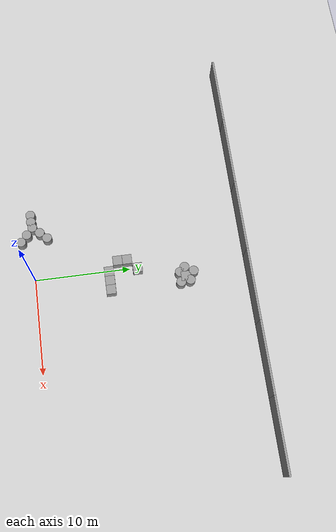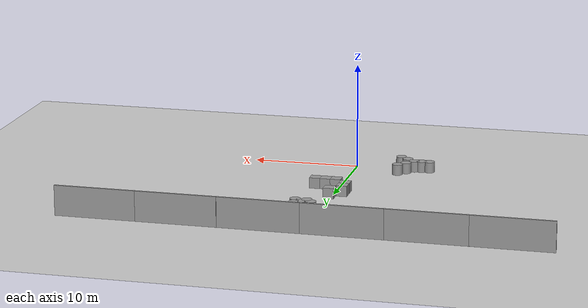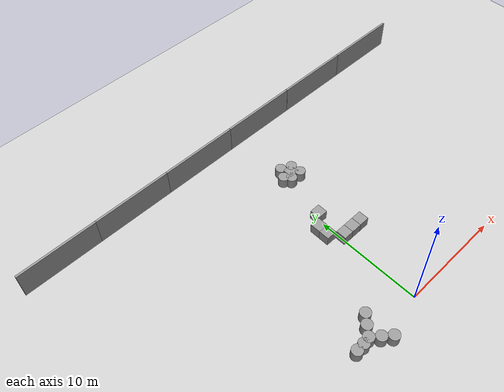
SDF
<sdf version="1.6">
 <world name="default">
  <model name="ground_plane">
   <static>1</static>
   <link name="link">
    <collision name="collision">
     <geometry><plane><normal>0 0 1</normal><size>100 100</size></plane></geometry>
     <surface><friction><ode><mu>100</mu><mu2>50</mu2></ode></friction></surface>
    </collision>
    <visual name="visual">
     <cast_shadows>0</cast_shadows>
     <geometry><plane><normal>0 0 1</normal><size>100 100</size></plane></geometry>
     <material>
      <script><uri>file://media/materials/scripts/gazebo.material</uri><name>Gazebo/Grey</name></script>
     </material>
    </visual>
   </link>
  </model>
  <model name="machine5">
   <link name="link_25">
    <pose>1.75317 -0.214523 0 0 -0 0</pose>
    <inertial>
     <mass>1</mass>
     <inertia><ixx>0.145833</ixx><ixy>0</ixy><ixz>0</ixz><iyy>0.145833</iyy><iyz>0</iyz><izz>0.125</izz></inertia>
    </inertial>
    <visual name="visual">
     <geometry><cylinder><radius>0.5</radius><length>1</length></cylinder></geometry>
     <material>
      <lighting>1</lighting>
      <script><uri>file://media/materials/scripts/gazebo.material</uri><name>Gazebo/Grey</name></script>
      <ambient>0.3 0.3 0.3 1</ambient>
      <diffuse>0.7 0.7 0.7 1</diffuse>
      <specular>0.01 0.01 0.01 1</specular>
      <emissive>0 0 0 1</emissive>
     </material>
    </visual>
    <collision name="collision">
     <geometry><cylinder><radius>0.5</radius><length>1</length></cylinder></geometry>
     <surface>
      <friction>
       <ode><mu>1</mu><mu2>1</mu2><fdir1>0 0 0</fdir1><slip1>0</slip1><slip2>0</slip2></ode>
       <torsional>
        <coefficient>1</coefficient>
        <patch_radius>0</patch_radius>
        <surface_radius>0</surface_radius>
        <use_patch_radius>1</use_patch_radius>
        <ode><slip>0</slip></ode>
       </torsional>
      </friction>
      <bounce><restitution_coefficient>0</restitution_coefficient><threshold>1e+06</threshold></bounce>
      <contact>
       <collide_without_contact>0</collide_without_contact>
       <collide_without_contact_bitmask>1</collide_without_contact_bitmask>
       <collide_bitmask>1</collide_bitmask>
       <ode>
        <soft_cfm>0</soft_cfm>
        <soft_erp>0.2</soft_erp>
        <kp>1e+13</kp>
        <kd>1</kd>
        <max_vel>0.01</max_vel>
        <min_depth>0</min_depth>
       </ode>
       <bullet>
        <split_impulse>1</split_impulse>
        <split_impulse_penetration_threshold>-0.01</split_impulse_penetration_threshold>
        <soft_cfm>0</soft_cfm>
        <soft_erp>0.2</soft_erp>
        <kp>1e+13</kp>
        <kd>1</kd>
       </bullet>
      </contact>
     </surface>
    </collision>
   </link>
   <link name="link_26">
    <pose>0.765019 -0.214523 0 0 -0 0</pose>
    <inertial>
     <mass>1</mass>
     <inertia><ixx>0.145833</ixx><ixy>0</ixy><ixz>0</ixz><iyy>0.145833</iyy><iyz>0</iyz><izz>0.125</izz></inertia>
    </inertial>
    <visual name="visual">
     <geometry><cylinder><radius>0.5</radius><length>1</length></cylinder></geometry>
     <material>
      <lighting>1</lighting>
      <script><uri>file://media/materials/scripts/gazebo.material</uri><name>Gazebo/Grey</name></script>
      <ambient>0.3 0.3 0.3 1</ambient>
      <diffuse>0.7 0.7 0.7 1</diffuse>
      <specular>0.01 0.01 0.01 1</specular>
      <emissive>0 0 0 1</emissive>
     </material>
    </visual>
    <collision name="collision">
     <geometry><cylinder><radius>0.5</radius><length>1</length></cylinder></geometry>
     <surface>
      <friction>
       <ode><mu>1</mu><mu2>1</mu2><fdir1>0 0 0</fdir1><slip1>0</slip1><slip2>0</slip2></ode>
       <torsional>
        <coefficient>1</coefficient>
        <patch_radius>0</patch_radius>
        <surface_radius>0</surface_radius>
        <use_patch_radius>1</use_patch_radius>
        <ode><slip>0</slip></ode>
       </torsional>
      </friction>
      <bounce><restitution_coefficient>0</restitution_coefficient><threshold>1e+06</threshold></bounce>
      <contact>
       <collide_without_contact>0</collide_without_contact>
       <collide_without_contact_bitmask>1</collide_without_contact_bitmask>
       <collide_bitmask>1</collide_bitmask>
       <ode>
        <soft_cfm>0</soft_cfm>
        <soft_erp>0.2</soft_erp>
        <kp>1e+13</kp>
        <kd>1</kd>
        <max_vel>0.01</max_vel>
        <min_depth>0</min_depth>
       </ode>
       <bullet>
        <split_impulse>1</split_impulse>
        <split_impulse_penetration_threshold>-0.01</split_impulse_penetration_threshold>
        <soft_cfm>0</soft_cfm>
        <soft_erp>0.2</soft_erp>
        <kp>1e+13</kp>
        <kd>1</kd>
       </bullet>
      </contact>
     </surface>
    </collision>
   </link>
   <link name="link_27">
    <pose>-0.229545 -0.214523 0 0 -0 0</pose>
    <inertial>
     <mass>1</mass>
     <inertia><ixx>0.145833</ixx><ixy>0</ixy><ixz>0</ixz><iyy>0.145833</iyy><iyz>0</iyz><izz>0.125</izz></inertia>
    </inertial>
    <visual name="visual">
     <geometry><cylinder><radius>0.5</radius><length>1</length></cylinder></geometry>
     <material>
      <lighting>1</lighting>
      <script><uri>file://media/materials/scripts/gazebo.material</uri><name>Gazebo/Grey</name></script>
      <ambient>0.3 0.3 0.3 1</ambient>
      <diffuse>0.7 0.7 0.7 1</diffuse>
      <specular>0.01 0.01 0.01 1</specular>
      <emissive>0 0 0 1</emissive>
     </material>
    </visual>
    <collision name="collision">
     <geometry><cylinder><radius>0.5</radius><length>1</length></cylinder></geometry>
     <surface>
      <friction>
       <ode><mu>1</mu><mu2>1</mu2><fdir1>0 0 0</fdir1><slip1>0</slip1><slip2>0</slip2></ode>
       <torsional>
        <coefficient>1</coefficient>
        <patch_radius>0</patch_radius>
        <surface_radius>0</surface_radius>
        <use_patch_radius>1</use_patch_radius>
        <ode><slip>0</slip></ode>
       </torsional>
      </friction>
      <bounce><restitution_coefficient>0</restitution_coefficient><threshold>1e+06</threshold></bounce>
      <contact>
       <collide_without_contact>0</collide_without_contact>
       <collide_without_contact_bitmask>1</collide_without_contact_bitmask>
       <collide_bitmask>1</collide_bitmask>
       <ode>
        <soft_cfm>0</soft_cfm>
        <soft_erp>0.2</soft_erp>
        <kp>1e+13</kp>
        <kd>1</kd>
        <max_vel>0.01</max_vel>
        <min_depth>0</min_depth>
       </ode>
       <bullet>
        <split_impulse>1</split_impulse>
        <split_impulse_penetration_threshold>-0.01</split_impulse_penetration_threshold>
        <soft_cfm>0</soft_cfm>
        <soft_erp>0.2</soft_erp>
        <kp>1e+13</kp>
        <kd>1</kd>
       </bullet>
      </contact>
     </surface>
    </collision>
   </link>
   <link name="link_28">
    <pose>-0.194579 0.785477 0 0 -0 0</pose>
    <inertial>
     <mass>1</mass>
     <inertia><ixx>0.145833</ixx><ixy>0</ixy><ixz>0</ixz><iyy>0.145833</iyy><iyz>0</iyz><izz>0.125</izz></inertia>
    </inertial>
    <visual name="visual">
     <geometry><cylinder><radius>0.5</radius><length>1</length></cylinder></geometry>
     <material>
      <lighting>1</lighting>
      <script><uri>file://media/materials/scripts/gazebo.material</uri><name>Gazebo/Grey</name></script>
      <ambient>0.3 0.3 0.3 1</ambient>
      <diffuse>0.7 0.7 0.7 1</diffuse>
      <specular>0.01 0.01 0.01 1</specular>
      <emissive>0 0 0 1</emissive>
     </material>
    </visual>
    <collision name="collision">
     <geometry><cylinder><radius>0.5</radius><length>1</length></cylinder></geometry>
     <surface>
      <friction>
       <ode><mu>1</mu><mu2>1</mu2><fdir1>0 0 0</fdir1><slip1>0</slip1><slip2>0</slip2></ode>
       <torsional>
        <coefficient>1</coefficient>
        <patch_radius>0</patch_radius>
        <surface_radius>0</surface_radius>
        <use_patch_radius>1</use_patch_radius>
        <ode><slip>0</slip></ode>
       </torsional>
      </friction>
      <bounce><restitution_coefficient>0</restitution_coefficient><threshold>1e+06</threshold></bounce>
      <contact>
       <collide_without_contact>0</collide_without_contact>
       <collide_without_contact_bitmask>1</collide_without_contact_bitmask>
       <collide_bitmask>1</collide_bitmask>
       <ode>
        <soft_cfm>0</soft_cfm>
        <soft_erp>0.2</soft_erp>
        <kp>1e+13</kp>
        <kd>1</kd>
        <max_vel>0.01</max_vel>
        <min_depth>0</min_depth>
       </ode>
       <bullet>
        <split_impulse>1</split_impulse>
        <split_impulse_penetration_threshold>-0.01</split_impulse_penetration_threshold>
        <soft_cfm>0</soft_cfm>
        <soft_erp>0.2</soft_erp>
        <kp>1e+13</kp>
        <kd>1</kd>
       </bullet>
      </contact>
     </surface>
    </collision>
   </link>
   <link name="link_29">
    <pose>-0.141509 1.78548 0 0 -0 0</pose>
    <inertial>
     <mass>1</mass>
     <inertia><ixx>0.145833</ixx><ixy>0</ixy><ixz>0</ixz><iyy>0.145833</iyy><iyz>0</iyz><izz>0.125</izz></inertia>
    </inertial>
    <visual name="visual">
     <geometry><cylinder><radius>0.5</radius><length>1</length></cylinder></geometry>
     <material>
      <lighting>1</lighting>
      <script><uri>file://media/materials/scripts/gazebo.material</uri><name>Gazebo/Grey</name></script>
      <ambient>0.3 0.3 0.3 1</ambient>
      <diffuse>0.7 0.7 0.7 1</diffuse>
      <specular>0.01 0.01 0.01 1</specular>
      <emissive>0 0 0 1</emissive>
     </material>
    </visual>
    <collision name="collision">
     <geometry><cylinder><radius>0.5</radius><length>1</length></cylinder></geometry>
     <surface>
      <friction>
       <ode><mu>1</mu><mu2>1</mu2><fdir1>0 0 0</fdir1><slip1>0</slip1><slip2>0</slip2></ode>
       <torsional>
        <coefficient>1</coefficient>
        <patch_radius>0</patch_radius>
        <surface_radius>0</surface_radius>
        <use_patch_radius>1</use_patch_radius>
        <ode><slip>0</slip></ode>
       </torsional>
      </friction>
      <bounce><restitution_coefficient>0</restitution_coefficient><threshold>1e+06</threshold></bounce>
      <contact>
       <collide_without_contact>0</collide_without_contact>
       <collide_without_contact_bitmask>1</collide_without_contact_bitmask>
       <collide_bitmask>1</collide_bitmask>
       <ode>
        <soft_cfm>0</soft_cfm>
        <soft_erp>0.2</soft_erp>
        <kp>1e+13</kp>
        <kd>1</kd>
        <max_vel>0.01</max_vel>
        <min_depth>0</min_depth>
       </ode>
       <bullet>
        <split_impulse>1</split_impulse>
        <split_impulse_penetration_threshold>-0.01</split_impulse_penetration_threshold>
        <soft_cfm>0</soft_cfm>
        <soft_erp>0.2</soft_erp>
        <kp>1e+13</kp>
        <kd>1</kd>
       </bullet>
      </contact>
     </surface>
    </collision>
   </link>
   <link name="link_30">
    <pose>-0.682121 -0.712863 0 0 -0 0</pose>
    <inertial>
     <mass>1</mass>
     <inertia><ixx>0.145833</ixx><ixy>0</ixy><ixz>0</ixz><iyy>0.145833</iyy><iyz>0</iyz><izz>0.125</izz></inertia>
    </inertial>
    <visual name="visual">
     <geometry><cylinder><radius>0.5</radius><length>1</length></cylinder></geometry>
     <material>
      <lighting>1</lighting>
      <script><uri>file://media/materials/scripts/gazebo.material</uri><name>Gazebo/Grey</name></script>
      <ambient>0.3 0.3 0.3 1</ambient>
      <diffuse>0.7 0.7 0.7 1</diffuse>
      <specular>0.01 0.01 0.01 1</specular>
      <emissive>0 0 0 1</emissive>
     </material>
    </visual>
    <collision name="collision">
     <geometry><cylinder><radius>0.5</radius><length>1</length></cylinder></geometry>
     <surface>
      <friction>
       <ode><mu>1</mu><mu2>1</mu2><fdir1>0 0 0</fdir1><slip1>0</slip1><slip2>0</slip2></ode>
       <torsional>
        <coefficient>1</coefficient>
        <patch_radius>0</patch_radius>
        <surface_radius>0</surface_radius>
        <use_patch_radius>1</use_patch_radius>
        <ode><slip>0</slip></ode>
       </torsional>
      </friction>
      <bounce><restitution_coefficient>0</restitution_coefficient><threshold>1e+06</threshold></bounce>
      <contact>
       <collide_without_contact>0</collide_without_contact>
       <collide_without_contact_bitmask>1</collide_without_contact_bitmask>
       <collide_bitmask>1</collide_bitmask>
       <ode>
        <soft_cfm>0</soft_cfm>
        <soft_erp>0.2</soft_erp>
        <kp>1e+13</kp>
        <kd>1</kd>
        <max_vel>0.01</max_vel>
        <min_depth>0</min_depth>
       </ode>
       <bullet>
        <split_impulse>1</split_impulse>
        <split_impulse_penetration_threshold>-0.01</split_impulse_penetration_threshold>
        <soft_cfm>0</soft_cfm>
        <soft_erp>0.2</soft_erp>
        <kp>1e+13</kp>
        <kd>1</kd>
       </bullet>
      </contact>
     </surface>
    </collision>
   </link>
   <link name="link_31">
    <pose>-1.27043 -1.21452 0 0 -0 0</pose>
    <inertial>
     <mass>1</mass>
     <inertia><ixx>0.145833</ixx><ixy>0</ixy><ixz>0</ixz><iyy>0.145833</iyy><iyz>0</iyz><izz>0.125</izz></inertia>
    </inertial>
    <visual name="visual">
     <geometry><cylinder><radius>0.5</radius><length>1</length></cylinder></geometry>
     <material>
      <lighting>1</lighting>
      <script><uri>file://media/materials/scripts/gazebo.material</uri><name>Gazebo/Grey</name></script>
      <ambient>0.3 0.3 0.3 1</ambient>
      <diffuse>0.7 0.7 0.7 1</diffuse>
      <specular>0.01 0.01 0.01 1</specular>
      <emissive>0 0 0 1</emissive>
     </material>
    </visual>
    <collision name="collision">
     <geometry><cylinder><radius>0.5</radius><length>1</length></cylinder></geometry>
     <surface>
      <friction>
       <ode><mu>1</mu><mu2>1</mu2><fdir1>0 0 0</fdir1><slip1>0</slip1><slip2>0</slip2></ode>
       <torsional>
        <coefficient>1</coefficient>
        <patch_radius>0</patch_radius>
        <surface_radius>0</surface_radius>
        <use_patch_radius>1</use_patch_radius>
        <ode><slip>0</slip></ode>
       </torsional>
      </friction>
      <bounce><restitution_coefficient>0</restitution_coefficient><threshold>1e+06</threshold></bounce>
      <contact>
       <collide_without_contact>0</collide_without_contact>
       <collide_without_contact_bitmask>1</collide_without_contact_bitmask>
       <collide_bitmask>1</collide_bitmask>
       <ode>
        <soft_cfm>0</soft_cfm>
        <soft_erp>0.2</soft_erp>
        <kp>1e+13</kp>
        <kd>1</kd>
        <max_vel>0.01</max_vel>
        <min_depth>0</min_depth>
       </ode>
       <bullet>
        <split_impulse>1</split_impulse>
        <split_impulse_penetration_threshold>-0.01</split_impulse_penetration_threshold>
        <soft_cfm>0</soft_cfm>
        <soft_erp>0.2</soft_erp>
        <kp>1e+13</kp>
        <kd>1</kd>
       </bullet>
      </contact>
     </surface>
    </collision>
   </link>
   <static>0</static>
   <pose>-5.31788 0.214519 0.499942 0 0 -0.7</pose>
  </model>
  <model name="machine2_clone">
   <link name="link_6">
    <pose>0.153167 -0.028269 0 0 -0 0</pose>
    <inertial>
     <mass>1</mass>
     <inertia>
      <ixx>0.166667</ixx>
      <ixy>0</ixy>
      <ixz>0</ixz>
      <iyy>0.166667</iyy>
      <iyz>0</iyz>
      <izz>0.166667</izz>
     </inertia>
    </inertial>
    <visual name="visual">
     <geometry><box><size>1 1 1</size></box></geometry>
     <material>
      <lighting>1</lighting>
      <script><uri>file://media/materials/scripts/gazebo.material</uri><name>Gazebo/Grey</name></script>
      <ambient>0.3 0.3 0.3 1</ambient>
      <diffuse>0.7 0.7 0.7 1</diffuse>
      <specular>0.01 0.01 0.01 1</specular>
      <emissive>0 0 0 1</emissive>
     </material>
    </visual>
    <collision name="collision">
     <geometry><box><size>1 1 1</size></box></geometry>
     <surface>
      <friction>
       <ode><mu>1</mu><mu2>1</mu2><fdir1>0 0 0</fdir1><slip1>0</slip1><slip2>0</slip2></ode>
       <torsional>
        <coefficient>1</coefficient>
        <patch_radius>0</patch_radius>
        <surface_radius>0</surface_radius>
        <use_patch_radius>1</use_patch_radius>
        <ode><slip>0</slip></ode>
       </torsional>
      </friction>
      <bounce><restitution_coefficient>0</restitution_coefficient><threshold>1e+06</threshold></bounce>
      <contact>
       <collide_without_contact>0</collide_without_contact>
       <collide_without_contact_bitmask>1</collide_without_contact_bitmask>
       <collide_bitmask>1</collide_bitmask>
       <ode>
        <soft_cfm>0</soft_cfm>
        <soft_erp>0.2</soft_erp>
        <kp>1e+13</kp>
        <kd>1</kd>
        <max_vel>0.01</max_vel>
        <min_depth>0</min_depth>
       </ode>
       <bullet>
        <split_impulse>1</split_impulse>
        <split_impulse_penetration_threshold>-0.01</split_impulse_penetration_threshold>
        <soft_cfm>0</soft_cfm>
        <soft_erp>0.2</soft_erp>
        <kp>1e+13</kp>
        <kd>1</kd>
       </bullet>
      </contact>
     </surface>
    </collision>
   </link>
   <link name="link_10">
    <pose>0.61205 0.404825 0 0 -0 0</pose>
    <inertial>
     <mass>1</mass>
     <inertia><ixx>0.145833</ixx><ixy>0</ixy><ixz>0</ixz><iyy>0.145833</iyy><iyz>0</iyz><izz>0.125</izz></inertia>
    </inertial>
    <visual name="visual">
     <geometry><cylinder><radius>0.5</radius><length>1</length></cylinder></geometry>
     <material>
      <lighting>1</lighting>
      <script><uri>file://media/materials/scripts/gazebo.material</uri><name>Gazebo/Grey</name></script>
      <ambient>0.3 0.3 0.3 1</ambient>
      <diffuse>0.7 0.7 0.7 1</diffuse>
      <specular>0.01 0.01 0.01 1</specular>
      <emissive>0 0 0 1</emissive>
     </material>
    </visual>
    <collision name="collision">
     <geometry><cylinder><radius>0.5</radius><length>1</length></cylinder></geometry>
     <surface>
      <friction>
       <ode><mu>1</mu><mu2>1</mu2><fdir1>0 0 0</fdir1><slip1>0</slip1><slip2>0</slip2></ode>
       <torsional>
        <coefficient>1</coefficient>
        <patch_radius>0</patch_radius>
        <surface_radius>0</surface_radius>
        <use_patch_radius>1</use_patch_radius>
        <ode><slip>0</slip></ode>
       </torsional>
      </friction>
      <bounce><restitution_coefficient>0</restitution_coefficient><threshold>1e+06</threshold></bounce>
      <contact>
       <collide_without_contact>0</collide_without_contact>
       <collide_without_contact_bitmask>1</collide_without_contact_bitmask>
       <collide_bitmask>1</collide_bitmask>
       <ode>
        <soft_cfm>0</soft_cfm>
        <soft_erp>0.2</soft_erp>
        <kp>1e+13</kp>
        <kd>1</kd>
        <max_vel>0.01</max_vel>
        <min_depth>0</min_depth>
       </ode>
       <bullet>
        <split_impulse>1</split_impulse>
        <split_impulse_penetration_threshold>-0.01</split_impulse_penetration_threshold>
        <soft_cfm>0</soft_cfm>
        <soft_erp>0.2</soft_erp>
        <kp>1e+13</kp>
        <kd>1</kd>
       </bullet>
      </contact>
     </surface>
    </collision>
   </link>
   <link name="link_11">
    <pose>0.739497 -0.595175 0 0 -0 0</pose>
    <inertial>
     <mass>1</mass>
     <inertia><ixx>0.145833</ixx><ixy>0</ixy><ixz>0</ixz><iyy>0.145833</iyy><iyz>0</iyz><izz>0.125</izz></inertia>
    </inertial>
    <visual name="visual">
     <geometry><cylinder><radius>0.5</radius><length>1</length></cylinder></geometry>
     <material>
      <lighting>1</lighting>
      <script><uri>file://media/materials/scripts/gazebo.material</uri><name>Gazebo/Grey</name></script>
      <ambient>0.3 0.3 0.3 1</ambient>
      <diffuse>0.7 0.7 0.7 1</diffuse>
      <specular>0.01 0.01 0.01 1</specular>
      <emissive>0 0 0 1</emissive>
     </material>
    </visual>
    <collision name="collision">
     <geometry><cylinder><radius>0.5</radius><length>1</length></cylinder></geometry>
     <surface>
      <friction>
       <ode><mu>1</mu><mu2>1</mu2><fdir1>0 0 0</fdir1><slip1>0</slip1><slip2>0</slip2></ode>
       <torsional>
        <coefficient>1</coefficient>
        <patch_radius>0</patch_radius>
        <surface_radius>0</surface_radius>
        <use_patch_radius>1</use_patch_radius>
        <ode><slip>0</slip></ode>
       </torsional>
      </friction>
      <bounce><restitution_coefficient>0</restitution_coefficient><threshold>1e+06</threshold></bounce>
      <contact>
       <collide_without_contact>0</collide_without_contact>
       <collide_without_contact_bitmask>1</collide_without_contact_bitmask>
       <collide_bitmask>1</collide_bitmask>
       <ode>
        <soft_cfm>0</soft_cfm>
        <soft_erp>0.2</soft_erp>
        <kp>1e+13</kp>
        <kd>1</kd>
        <max_vel>0.01</max_vel>
        <min_depth>0</min_depth>
       </ode>
       <bullet>
        <split_impulse>1</split_impulse>
        <split_impulse_penetration_threshold>-0.01</split_impulse_penetration_threshold>
        <soft_cfm>0</soft_cfm>
        <soft_erp>0.2</soft_erp>
        <kp>1e+13</kp>
        <kd>1</kd>
       </bullet>
      </contact>
     </surface>
    </collision>
   </link>
   <link name="link_12">
    <pose>-0.316153 0.858024 0 0 -0 0</pose>
    <inertial>
     <mass>1</mass>
     <inertia><ixx>0.145833</ixx><ixy>0</ixy><ixz>0</ixz><iyy>0.145833</iyy><iyz>0</iyz><izz>0.125</izz></inertia>
    </inertial>
    <visual name="visual">
     <geometry><cylinder><radius>0.5</radius><length>1</length></cylinder></geometry>
     <material>
      <lighting>1</lighting>
      <script><uri>file://media/materials/scripts/gazebo.material</uri><name>Gazebo/Grey</name></script>
      <ambient>0.3 0.3 0.3 1</ambient>
      <diffuse>0.7 0.7 0.7 1</diffuse>
      <specular>0.01 0.01 0.01 1</specular>
      <emissive>0 0 0 1</emissive>
     </material>
    </visual>
    <collision name="collision">
     <geometry><cylinder><radius>0.5</radius><length>1</length></cylinder></geometry>
     <surface>
      <friction>
       <ode><mu>1</mu><mu2>1</mu2><fdir1>0 0 0</fdir1><slip1>0</slip1><slip2>0</slip2></ode>
       <torsional>
        <coefficient>1</coefficient>
        <patch_radius>0</patch_radius>
        <surface_radius>0</surface_radius>
        <use_patch_radius>1</use_patch_radius>
        <ode><slip>0</slip></ode>
       </torsional>
      </friction>
      <bounce><restitution_coefficient>0</restitution_coefficient><threshold>1e+06</threshold></bounce>
      <contact>
       <collide_without_contact>0</collide_without_contact>
       <collide_without_contact_bitmask>1</collide_without_contact_bitmask>
       <collide_bitmask>1</collide_bitmask>
       <ode>
        <soft_cfm>0</soft_cfm>
        <soft_erp>0.2</soft_erp>
        <kp>1e+13</kp>
        <kd>1</kd>
        <max_vel>0.01</max_vel>
        <min_depth>0</min_depth>
       </ode>
       <bullet>
        <split_impulse>1</split_impulse>
        <split_impulse_penetration_threshold>-0.01</split_impulse_penetration_threshold>
        <soft_cfm>0</soft_cfm>
        <soft_erp>0.2</soft_erp>
        <kp>1e+13</kp>
        <kd>1</kd>
       </bullet>
      </contact>
     </surface>
    </collision>
   </link>
   <link name="link_8">
    <pose>-0.846833 -0.044231 0 0 -0 0</pose>
    <inertial>
     <mass>1</mass>
     <inertia><ixx>0.145833</ixx><ixy>0</ixy><ixz>0</ixz><iyy>0.145833</iyy><iyz>0</iyz><izz>0.125</izz></inertia>
    </inertial>
    <visual name="visual">
     <geometry><cylinder><radius>0.5</radius><length>1</length></cylinder></geometry>
     <material>
      <lighting>1</lighting>
      <script><uri>file://media/materials/scripts/gazebo.material</uri><name>Gazebo/Grey</name></script>
      <ambient>0.3 0.3 0.3 1</ambient>
      <diffuse>0.7 0.7 0.7 1</diffuse>
      <specular>0.01 0.01 0.01 1</specular>
      <emissive>0 0 0 1</emissive>
     </material>
    </visual>
    <collision name="collision">
     <geometry><cylinder><radius>0.5</radius><length>1</length></cylinder></geometry>
     <surface>
      <friction>
       <ode><mu>1</mu><mu2>1</mu2><fdir1>0 0 0</fdir1><slip1>0</slip1><slip2>0</slip2></ode>
       <torsional>
        <coefficient>1</coefficient>
        <patch_radius>0</patch_radius>
        <surface_radius>0</surface_radius>
        <use_patch_radius>1</use_patch_radius>
        <ode><slip>0</slip></ode>
       </torsional>
      </friction>
      <bounce><restitution_coefficient>0</restitution_coefficient><threshold>1e+06</threshold></bounce>
      <contact>
       <collide_without_contact>0</collide_without_contact>
       <collide_without_contact_bitmask>1</collide_without_contact_bitmask>
       <collide_bitmask>1</collide_bitmask>
       <ode>
        <soft_cfm>0</soft_cfm>
        <soft_erp>0.2</soft_erp>
        <kp>1e+13</kp>
        <kd>1</kd>
        <max_vel>0.01</max_vel>
        <min_depth>0</min_depth>
       </ode>
       <bullet>
        <split_impulse>1</split_impulse>
        <split_impulse_penetration_threshold>-0.01</split_impulse_penetration_threshold>
        <soft_cfm>0</soft_cfm>
        <soft_erp>0.2</soft_erp>
        <kp>1e+13</kp>
        <kd>1</kd>
       </bullet>
      </contact>
     </surface>
    </collision>
   </link>
   <link name="link_9">
    <pose>-0.34172 -0.595175 0 0 -0 0</pose>
    <inertial>
     <mass>1</mass>
     <inertia><ixx>0.145833</ixx><ixy>0</ixy><ixz>0</ixz><iyy>0.145833</iyy><iyz>0</iyz><izz>0.125</izz></inertia>
    </inertial>
    <visual name="visual">
     <geometry><cylinder><radius>0.5</radius><length>1</length></cylinder></geometry>
     <material>
      <lighting>1</lighting>
      <script><uri>file://media/materials/scripts/gazebo.material</uri><name>Gazebo/Grey</name></script>
      <ambient>0.3 0.3 0.3 1</ambient>
      <diffuse>0.7 0.7 0.7 1</diffuse>
      <specular>0.01 0.01 0.01 1</specular>
      <emissive>0 0 0 1</emissive>
     </material>
    </visual>
    <collision name="collision">
     <geometry><cylinder><radius>0.5</radius><length>1</length></cylinder></geometry>
     <surface>
      <friction>
       <ode><mu>1</mu><mu2>1</mu2><fdir1>0 0 0</fdir1><slip1>0</slip1><slip2>0</slip2></ode>
       <torsional>
        <coefficient>1</coefficient>
        <patch_radius>0</patch_radius>
        <surface_radius>0</surface_radius>
        <use_patch_radius>1</use_patch_radius>
        <ode><slip>0</slip></ode>
       </torsional>
      </friction>
      <bounce><restitution_coefficient>0</restitution_coefficient><threshold>1e+06</threshold></bounce>
      <contact>
       <collide_without_contact>0</collide_without_contact>
       <collide_without_contact_bitmask>1</collide_without_contact_bitmask>
       <collide_bitmask>1</collide_bitmask>
       <ode>
        <soft_cfm>0</soft_cfm>
        <soft_erp>0.2</soft_erp>
        <kp>1e+13</kp>
        <kd>1</kd>
        <max_vel>0.01</max_vel>
        <min_depth>0</min_depth>
       </ode>
       <bullet>
        <split_impulse>1</split_impulse>
        <split_impulse_penetration_threshold>-0.01</split_impulse_penetration_threshold>
        <soft_cfm>0</soft_cfm>
        <soft_erp>0.2</soft_erp>
        <kp>1e+13</kp>
        <kd>1</kd>
       </bullet>
      </contact>
     </surface>
    </collision>
   </link>
   <static>0</static>
   <pose>1.59288 15.718 0.5 0 -0 0</pose>
  </model>
  <model name="machin4_1">
   <link name="link_19">
    <pose>0.127295 1 0 0 -0 0</pose>
    <inertial>
     <mass>1</mass>
     <inertia>
      <ixx>0.166667</ixx>
      <ixy>0</ixy>
      <ixz>0</ixz>
      <iyy>0.166667</iyy>
      <iyz>0</iyz>
      <izz>0.166667</izz>
     </inertia>
    </inertial>
    <visual name="visual">
     <geometry><box><size>1 1 1</size></box></geometry>
     <material>
      <lighting>1</lighting>
      <script><uri>file://media/materials/scripts/gazebo.material</uri><name>Gazebo/Grey</name></script>
      <ambient>0.3 0.3 0.3 1</ambient>
      <diffuse>0.7 0.7 0.7 1</diffuse>
      <specular>0.01 0.01 0.01 1</specular>
      <emissive>0 0 0 1</emissive>
     </material>
    </visual>
    <collision name="collision">
     <geometry><box><size>1 1 1</size></box></geometry>
     <surface>
      <friction>
       <ode><mu>1</mu><mu2>1</mu2><fdir1>0 0 0</fdir1><slip1>0</slip1><slip2>0</slip2></ode>
       <torsional>
        <coefficient>1</coefficient>
        <patch_radius>0</patch_radius>
        <surface_radius>0</surface_radius>
        <use_patch_radius>1</use_patch_radius>
        <ode><slip>0</slip></ode>
       </torsional>
      </friction>
      <bounce><restitution_coefficient>0</restitution_coefficient><threshold>1e+06</threshold></bounce>
      <contact>
       <collide_without_contact>0</collide_without_contact>
       <collide_without_contact_bitmask>1</collide_without_contact_bitmask>
       <collide_bitmask>1</collide_bitmask>
       <ode>
        <soft_cfm>0</soft_cfm>
        <soft_erp>0.2</soft_erp>
        <kp>1e+13</kp>
        <kd>1</kd>
        <max_vel>0.01</max_vel>
        <min_depth>0</min_depth>
       </ode>
       <bullet>
        <split_impulse>1</split_impulse>
        <split_impulse_penetration_threshold>-0.01</split_impulse_penetration_threshold>
        <soft_cfm>0</soft_cfm>
        <soft_erp>0.2</soft_erp>
        <kp>1e+13</kp>
        <kd>1</kd>
       </bullet>
      </contact>
     </surface>
    </collision>
   </link>
   <link name="link_20">
    <pose>-0.843938 1 0 0 -0 0</pose>
    <inertial>
     <mass>1</mass>
     <inertia>
      <ixx>0.166667</ixx>
      <ixy>0</ixy>
      <ixz>0</ixz>
      <iyy>0.166667</iyy>
      <iyz>0</iyz>
      <izz>0.166667</izz>
     </inertia>
    </inertial>
    <visual name="visual">
     <geometry><box><size>1 1 1</size></box></geometry>
     <material>
      <lighting>1</lighting>
      <script><uri>file://media/materials/scripts/gazebo.material</uri><name>Gazebo/Grey</name></script>
      <ambient>0.3 0.3 0.3 1</ambient>
      <diffuse>0.7 0.7 0.7 1</diffuse>
      <specular>0.01 0.01 0.01 1</specular>
      <emissive>0 0 0 1</emissive>
     </material>
    </visual>
    <collision name="collision">
     <geometry><box><size>1 1 1</size></box></geometry>
     <surface>
      <friction>
       <ode><mu>1</mu><mu2>1</mu2><fdir1>0 0 0</fdir1><slip1>0</slip1><slip2>0</slip2></ode>
       <torsional>
        <coefficient>1</coefficient>
        <patch_radius>0</patch_radius>
        <surface_radius>0</surface_radius>
        <use_patch_radius>1</use_patch_radius>
        <ode><slip>0</slip></ode>
       </torsional>
      </friction>
      <bounce><restitution_coefficient>0</restitution_coefficient><threshold>1e+06</threshold></bounce>
      <contact>
       <collide_without_contact>0</collide_without_contact>
       <collide_without_contact_bitmask>1</collide_without_contact_bitmask>
       <collide_bitmask>1</collide_bitmask>
       <ode>
        <soft_cfm>0</soft_cfm>
        <soft_erp>0.2</soft_erp>
        <kp>1e+13</kp>
        <kd>1</kd>
        <max_vel>0.01</max_vel>
        <min_depth>0</min_depth>
       </ode>
       <bullet>
        <split_impulse>1</split_impulse>
        <split_impulse_penetration_threshold>-0.01</split_impulse_penetration_threshold>
        <soft_cfm>0</soft_cfm>
        <soft_erp>0.2</soft_erp>
        <kp>1e+13</kp>
        <kd>1</kd>
       </bullet>
      </contact>
     </surface>
    </collision>
   </link>
   <link name="link_21">
    <pose>1.19236 0 0 0 -0 0</pose>
    <inertial>
     <mass>1</mass>
     <inertia>
      <ixx>0.166667</ixx>
      <ixy>0</ixy>
      <ixz>0</ixz>
      <iyy>0.166667</iyy>
      <iyz>0</iyz>
      <izz>0.166667</izz>
     </inertia>
    </inertial>
    <visual name="visual">
     <geometry><box><size>1 1 1</size></box></geometry>
     <material>
      <lighting>1</lighting>
      <script><uri>file://media/materials/scripts/gazebo.material</uri><name>Gazebo/Grey</name></script>
      <ambient>0.3 0.3 0.3 1</ambient>
      <diffuse>0.7 0.7 0.7 1</diffuse>
      <specular>0.01 0.01 0.01 1</specular>
      <emissive>0 0 0 1</emissive>
     </material>
    </visual>
    <collision name="collision">
     <geometry><box><size>1 1 1</size></box></geometry>
     <surface>
      <friction>
       <ode><mu>1</mu><mu2>1</mu2><fdir1>0 0 0</fdir1><slip1>0</slip1><slip2>0</slip2></ode>
       <torsional>
        <coefficient>1</coefficient>
        <patch_radius>0</patch_radius>
        <surface_radius>0</surface_radius>
        <use_patch_radius>1</use_patch_radius>
        <ode><slip>0</slip></ode>
       </torsional>
      </friction>
      <bounce><restitution_coefficient>0</restitution_coefficient><threshold>1e+06</threshold></bounce>
      <contact>
       <collide_without_contact>0</collide_without_contact>
       <collide_without_contact_bitmask>1</collide_without_contact_bitmask>
       <collide_bitmask>1</collide_bitmask>
       <ode>
        <soft_cfm>0</soft_cfm>
        <soft_erp>0.2</soft_erp>
        <kp>1e+13</kp>
        <kd>1</kd>
        <max_vel>0.01</max_vel>
        <min_depth>0</min_depth>
       </ode>
       <bullet>
        <split_impulse>1</split_impulse>
        <split_impulse_penetration_threshold>-0.01</split_impulse_penetration_threshold>
        <soft_cfm>0</soft_cfm>
        <soft_erp>0.2</soft_erp>
        <kp>1e+13</kp>
        <kd>1</kd>
       </bullet>
      </contact>
     </surface>
    </collision>
   </link>
   <link name="link_22">
    <pose>1.19278 -1 0 0 -0 0</pose>
    <inertial>
     <mass>1</mass>
     <inertia>
      <ixx>0.166667</ixx>
      <ixy>0</ixy>
      <ixz>0</ixz>
      <iyy>0.166667</iyy>
      <iyz>0</iyz>
      <izz>0.166667</izz>
     </inertia>
    </inertial>
    <visual name="visual">
     <geometry><box><size>1 1 1</size></box></geometry>
     <material>
      <lighting>1</lighting>
      <script><uri>file://media/materials/scripts/gazebo.material</uri><name>Gazebo/Grey</name></script>
      <ambient>0.3 0.3 0.3 1</ambient>
      <diffuse>0.7 0.7 0.7 1</diffuse>
      <specular>0.01 0.01 0.01 1</specular>
      <emissive>0 0 0 1</emissive>
     </material>
    </visual>
    <collision name="collision">
     <geometry><box><size>1 1 1</size></box></geometry>
     <surface>
      <friction>
       <ode><mu>1</mu><mu2>1</mu2><fdir1>0 0 0</fdir1><slip1>0</slip1><slip2>0</slip2></ode>
       <torsional>
        <coefficient>1</coefficient>
        <patch_radius>0</patch_radius>
        <surface_radius>0</surface_radius>
        <use_patch_radius>1</use_patch_radius>
        <ode><slip>0</slip></ode>
       </torsional>
      </friction>
      <bounce><restitution_coefficient>0</restitution_coefficient><threshold>1e+06</threshold></bounce>
      <contact>
       <collide_without_contact>0</collide_without_contact>
       <collide_without_contact_bitmask>1</collide_without_contact_bitmask>
       <collide_bitmask>1</collide_bitmask>
       <ode>
        <soft_cfm>0</soft_cfm>
        <soft_erp>0.2</soft_erp>
        <kp>1e+13</kp>
        <kd>1</kd>
        <max_vel>0.01</max_vel>
        <min_depth>0</min_depth>
       </ode>
       <bullet>
        <split_impulse>1</split_impulse>
        <split_impulse_penetration_threshold>-0.01</split_impulse_penetration_threshold>
        <soft_cfm>0</soft_cfm>
        <soft_erp>0.2</soft_erp>
        <kp>1e+13</kp>
        <kd>1</kd>
       </bullet>
      </contact>
     </surface>
    </collision>
   </link>
   <link name="link_23">
    <pose>0.174071 -2 0 0 -0 0</pose>
    <inertial>
     <mass>1</mass>
     <inertia>
      <ixx>0.166667</ixx>
      <ixy>0</ixy>
      <ixz>0</ixz>
      <iyy>0.166667</iyy>
      <iyz>0</iyz>
      <izz>0.166667</izz>
     </inertia>
    </inertial>
    <visual name="visual">
     <geometry><box><size>1 1 1</size></box></geometry>
     <material>
      <lighting>1</lighting>
      <script><uri>file://media/materials/scripts/gazebo.material</uri><name>Gazebo/Grey</name></script>
      <ambient>0.3 0.3 0.3 1</ambient>
      <diffuse>0.7 0.7 0.7 1</diffuse>
      <specular>0.01 0.01 0.01 1</specular>
      <emissive>0 0 0 1</emissive>
     </material>
    </visual>
    <collision name="collision">
     <geometry><box><size>1 1 1</size></box></geometry>
     <surface>
      <friction>
       <ode><mu>1</mu><mu2>1</mu2><fdir1>0 0 0</fdir1><slip1>0</slip1><slip2>0</slip2></ode>
       <torsional>
        <coefficient>1</coefficient>
        <patch_radius>0</patch_radius>
        <surface_radius>0</surface_radius>
        <use_patch_radius>1</use_patch_radius>
        <ode><slip>0</slip></ode>
       </torsional>
      </friction>
      <bounce><restitution_coefficient>0</restitution_coefficient><threshold>1e+06</threshold></bounce>
      <contact>
       <collide_without_contact>0</collide_without_contact>
       <collide_without_contact_bitmask>1</collide_without_contact_bitmask>
       <collide_bitmask>1</collide_bitmask>
       <ode>
        <soft_cfm>0</soft_cfm>
        <soft_erp>0.2</soft_erp>
        <kp>1e+13</kp>
        <kd>1</kd>
        <max_vel>0.01</max_vel>
        <min_depth>0</min_depth>
       </ode>
       <bullet>
        <split_impulse>1</split_impulse>
        <split_impulse_penetration_threshold>-0.01</split_impulse_penetration_threshold>
        <soft_cfm>0</soft_cfm>
        <soft_erp>0.2</soft_erp>
        <kp>1e+13</kp>
        <kd>1</kd>
       </bullet>
      </contact>
     </surface>
    </collision>
   </link>
   <link name="link_24">
    <pose>-1.84258 1 0 0 -0 0</pose>
    <inertial>
     <mass>1</mass>
     <inertia>
      <ixx>0.166667</ixx>
      <ixy>0</ixy>
      <ixz>0</ixz>
      <iyy>0.166667</iyy>
      <iyz>0</iyz>
      <izz>0.166667</izz>
     </inertia>
    </inertial>
    <visual name="visual">
     <geometry><box><size>1 1 1</size></box></geometry>
     <material>
      <lighting>1</lighting>
      <script><uri>file://media/materials/scripts/gazebo.material</uri><name>Gazebo/Grey</name></script>
      <ambient>0.3 0.3 0.3 1</ambient>
      <diffuse>0.7 0.7 0.7 1</diffuse>
      <specular>0.01 0.01 0.01 1</specular>
      <emissive>0 0 0 1</emissive>
     </material>
    </visual>
    <collision name="collision">
     <geometry><box><size>1 1 1</size></box></geometry>
     <surface>
      <friction>
       <ode><mu>1</mu><mu2>1</mu2><fdir1>0 0 0</fdir1><slip1>0</slip1><slip2>0</slip2></ode>
       <torsional>
        <coefficient>1</coefficient>
        <patch_radius>0</patch_radius>
        <surface_radius>0</surface_radius>
        <use_patch_radius>1</use_patch_radius>
        <ode><slip>0</slip></ode>
       </torsional>
      </friction>
      <bounce><restitution_coefficient>0</restitution_coefficient><threshold>1e+06</threshold></bounce>
      <contact>
       <collide_without_contact>0</collide_without_contact>
       <collide_without_contact_bitmask>1</collide_without_contact_bitmask>
       <collide_bitmask>1</collide_bitmask>
       <ode>
        <soft_cfm>0</soft_cfm>
        <soft_erp>0.2</soft_erp>
        <kp>1e+13</kp>
        <kd>1</kd>
        <max_vel>0.01</max_vel>
        <min_depth>0</min_depth>
       </ode>
       <bullet>
        <split_impulse>1</split_impulse>
        <split_impulse_penetration_threshold>-0.01</split_impulse_penetration_threshold>
        <soft_cfm>0</soft_cfm>
        <soft_erp>0.2</soft_erp>
        <kp>1e+13</kp>
        <kd>1</kd>
       </bullet>
      </contact>
     </surface>
    </collision>
   </link>
   <static>0</static>
   <pose>0.364709 8.79591 0.5 0 -0 3.14159</pose>
  </model>
  <model name="6walls_1">
   <model name="grey_wall">
    <static>1</static>
    <link name="link">
     <pose>0 0 1.4 0 -0 0</pose>
     <collision name="collision"><geometry><box><size>7.5 0.2 2.8</size></box></geometry></collision>
     <visual name="visual">
      <cast_shadows>0</cast_shadows>
      <geometry><box><size>7.5 0.2 2.8</size></box></geometry>
      <material>
       <script>
        <uri>model://grey_wall/materials/scripts</uri>
        <uri>model://grey_wall/materials/textures</uri>
        <name>vrc/grey_wall</name>
       </script>
      </material>
     </visual>
    </link>
    <pose>-18.6834 0 0 0 -0 0</pose>
   </model>
   <model name="grey_wall_0">
    <static>1</static>
    <link name="link">
     <pose>0 0 1.4 0 -0 0</pose>
     <collision name="collision"><geometry><box><size>7.5 0.2 2.8</size></box></geometry></collision>
     <visual name="visual">
      <cast_shadows>0</cast_shadows>
      <geometry><box><size>7.5 0.2 2.8</size></box></geometry>
      <material>
       <script>
        <uri>model://grey_wall/materials/scripts</uri>
        <uri>model://grey_wall/materials/textures</uri>
        <name>vrc/grey_wall</name>
       </script>
      </material>
     </visual>
    </link>
    <pose>-11.2658 0 0 0 -0 0</pose>
   </model>
   <model name="grey_wall_1">
    <static>1</static>
    <link name="link">
     <pose>0 0 1.4 0 -0 0</pose>
     <collision name="collision"><geometry><box><size>7.5 0.2 2.8</size></box></geometry></collision>
     <visual name="visual">
      <cast_shadows>0</cast_shadows>
      <geometry><box><size>7.5 0.2 2.8</size></box></geometry>
      <material>
       <script>
        <uri>model://grey_wall/materials/scripts</uri>
        <uri>model://grey_wall/materials/textures</uri>
        <name>vrc/grey_wall</name>
       </script>
      </material>
     </visual>
    </link>
    <pose>-3.76669 0 0 0 -0 0</pose>
   </model>
   <model name="grey_wall_2">
    <static>1</static>
    <link name="link">
     <pose>0 0 1.4 0 -0 0</pose>
     <collision name="collision"><geometry><box><size>7.5 0.2 2.8</size></box></geometry></collision>
     <visual name="visual">
      <cast_shadows>0</cast_shadows>
      <geometry><box><size>7.5 0.2 2.8</size></box></geometry>
      <material>
       <script>
        <uri>model://grey_wall/materials/scripts</uri>
        <uri>model://grey_wall/materials/textures</uri>
        <name>vrc/grey_wall</name>
       </script>
      </material>
     </visual>
    </link>
    <pose>3.73421 0 0 0 -0 0</pose>
   </model>
   <model name="grey_wall_3">
    <static>1</static>
    <link name="link">
     <pose>0 0 1.4 0 -0 0</pose>
     <collision name="collision"><geometry><box><size>7.5 0.2 2.8</size></box></geometry></collision>
     <visual name="visual">
      <cast_shadows>0</cast_shadows>
      <geometry><box><size>7.5 0.2 2.8</size></box></geometry>
      <material>
       <script>
        <uri>model://grey_wall/materials/scripts</uri>
        <uri>model://grey_wall/materials/textures</uri>
        <name>vrc/grey_wall</name>
       </script>
      </material>
     </visual>
    </link>
    <pose>11.2475 0 0 0 -0 0</pose>
   </model>
   <model name="grey_wall_4">
    <static>1</static>
    <link name="link">
     <pose>0 0 1.4 0 -0 0</pose>
     <collision name="collision"><geometry><box><size>7.5 0.2 2.8</size></box></geometry></collision>
     <visual name="visual">
      <cast_shadows>0</cast_shadows>
      <geometry><box><size>7.5 0.2 2.8</size></box></geometry>
      <material>
       <script>
        <uri>model://grey_wall/materials/scripts</uri>
        <uri>model://grey_wall/materials/textures</uri>
        <name>vrc/grey_wall</name>
       </script>
      </material>
     </visual>
    </link>
    <pose>18.7342 0 0 0 -0 0</pose>
   </model>
   <static>0</static>
   <pose>0.1687 22.2097 0 0 -0 0</pose>
  </model>
 </world>
</sdf>
